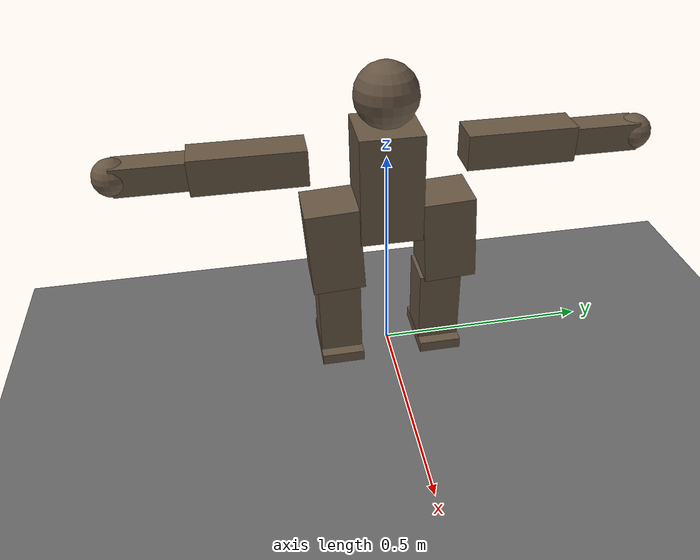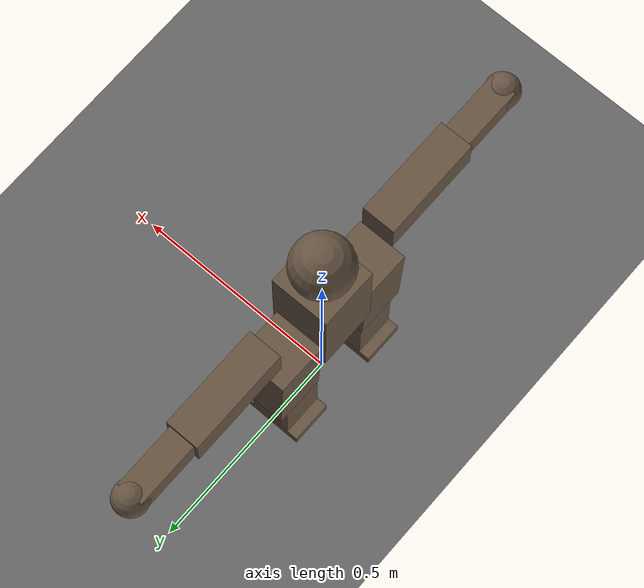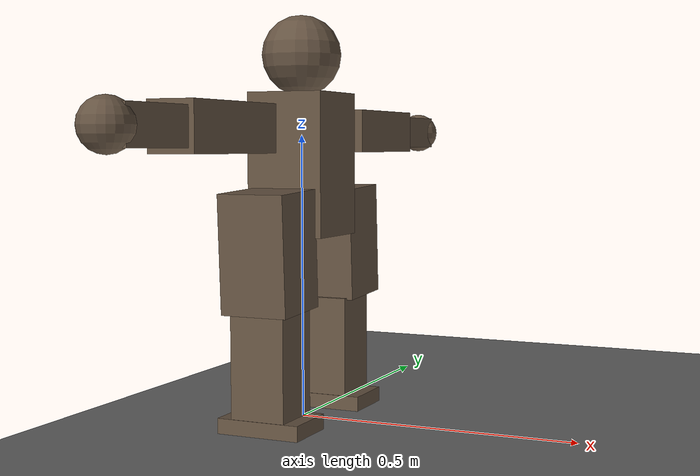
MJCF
<mujoco model="humanoid">
    <compiler angle="degree" inertiafromgeom="true"/>
    <default>
        <joint armature="0.045" damping="1.084"  limited="true"/>
        <geom conaffinity="0" condim="3" contype="0" material="geom" rgba="0.4 0.33 0.26 1.0"/>
        <position kp="21.1" forcerange="-15 15"/>
        <default class="collison">
            <geom group="1"/>
            <default class="foot">
                <geom type="box" friction="0.8 0.02 0.01" contype="1" conaffinity="1" density="1500"/>
            </default>
        </default>
    </default>
    <option iterations="8" timestep="0.003"/>
    <custom>
        <!-- brax custom params -->
        <numeric data="2500" name="constraint_limit_stiffness"/>
        <numeric data="27000" name="constraint_stiffness"/>
        <numeric data="30" name="constraint_ang_damping"/>
        <numeric data="80" name="constraint_vel_damping"/>
        <numeric data="-0.05" name="ang_damping"/>
        <numeric data="0.5" name="joint_scale_pos"/>
        <numeric data="0.1" name="joint_scale_ang"/>
        <numeric data="0" name="spring_mass_scale"/>
        <numeric data="1" name="spring_inertia_scale"/>
        <numeric data="20" name="matrix_inv_iterations"/>
        <numeric data="15" name="solver_maxls"/>
    </custom>
    <size nkey="5" nuser_geom="1"/>
    <visual>
        <map fogend="5" fogstart="3"/>
    </visual>
    <asset>
        <texture builtin="gradient" height="100" rgb1=".4 .5 .6" rgb2="0 0 0" type="skybox" width="100"/>
        <texture builtin="flat" height="1278" mark="cross" markrgb="1 1 1" name="texgeom" random="0.01" rgb1="0.8 0.6 0.4" rgb2="0.8 0.6 0.4" type="cube" width="127"/>
        <texture builtin="checker" height="100" name="texplane" rgb1="0 0 0" rgb2="0.8 0.8 0.8" type="2d" width="100"/>
        <material name="MatPlane" reflectance="0.5" shininess="1" specular="1" texrepeat="60 60" texture="texplane"/>
        <material name="geom" texture="texgeom" texuniform="true"/>

    </asset>
    <worldbody>
        <light cutoff="100" diffuse="1 1 1" dir="-0 0 -1.3" directional="true" exponent="1" pos="0 0 1.3" specular=".1 .1 .1"/>
        <geom conaffinity="1" condim="3" friction="1.5 .5 .5" material="MatPlane" name="floor" pos="0 0 0" size="20 20 0.125" type="plane" rgba="0.5 0.5 0.5 1.0"/>
        <body name="torso" pos="0 0 0.45">
            <site name="imu"/>
            <camera name="track" mode="trackcom" pos="0 -4 0" xyaxes="1 0 0 0 0 1"/>
            <joint armature="0" damping="0" limited="false" name="root" pos="0 0 0" stiffness="0" type="free"/>
            <geom contype="1" fromto="0 0 -0.125 0 0 0.125" name="torso1" size="0.07" type="box" density="1500"/>
            <geom contype="1" name="head" pos="0 0 .19" size=".07" type="sphere" user="258" density="1500"/>
            <!-- Right Thigh - Directly connected to torso -->
            <body name="right_thigh" pos="0 -0.13 -0.125" >
                <joint armature="0.01" axis="1 0 0" damping="5" name="right_hip_x" pos="0 0 0" range="-25 5" stiffness="10" type="hinge"/>
                <joint armature="0.01" axis="0 0 1" damping="5" name="right_hip_z" pos="0 0 0" range="-35 35" stiffness="10" type="hinge"/>
                <joint armature="0.0080" axis="0 1 0" damping="5" name="right_hip_y" pos="0 0 0" range="-90 60" stiffness="10" type="hinge"/>
                <geom contype="1" fromto="0 0 0.081 0 0.01 -.121" name="right_thigh1" size="0.06" type="box" density="1500"/>
                <body name="right_shin" pos="0 0.01 -0.121"  >
                    <joint armature="0.0060" axis="0 -1 0" name="right_knee" pos="0 0 .02" range="-90 0" type="hinge"/>
                    <geom contype="1" fromto="0 0 0 0 0 -.202" name="right_shin1" size="0.049" type="box" density="1500"/>
                    <body name="right_foot" pos="0 0 -0.102" >
                        <site name="right_foot"/>
                        <joint armature="0.01" axis="0 -1 0" damping="5" name="right_foot" pos="0 0 0" range="-25 25" stiffness="10" type="hinge" />
                        <geom name="right_foot"  pos="0 0 -0.102" size="0.075 0.05 0.025" user="0" class="foot"/>
                    </body>
                </body>
            </body>
            <!-- Left Thigh - Directly connected to torso -->
            <body name="left_thigh" pos="0 0.13 -0.125">
                <joint armature="0.01" axis="-1 0 0" damping="5" name="left_hip_x" pos="0 0 0" range="-25 5" stiffness="10" type="hinge"/>
                <joint armature="0.01" axis="0 0 -1" damping="5" name="left_hip_z" pos="0 0 0" range="-35 35" stiffness="10" type="hinge"/>
                <joint armature="0.01" axis="0 1 0" damping="5" name="left_hip_y" pos="0 0 0" range="-90 60" stiffness="10" type="hinge"/>
                <geom contype="1" fromto="0 0 0.081 0 0.01 -.121" name="left_thigh1" size="0.06" type="box" density="1500"/>
                <body name="left_shin" pos="0 -0.01 -0.121">
                    <joint armature="0.0060" axis="0 -1 0" name="left_knee" pos="0 0 .02" range="-90 0" stiffness="10" type="hinge"/>
                    <geom contype="1" fromto="0 0 0 0 0 -.202" name="left_shin1" size="0.049" type="box" density="1500"/>
                    <body name="left_foot" pos="0 0 -0.102">
                        <site name="left_foot"/>
                        <joint armature="0.01" axis="0 -1 0" damping="5" name="left_foot" pos="0 0 0" range="-25 25" stiffness="10" type="hinge"/>
                        <geom name="left_foot" pos="0 0 -0.102" size="0.075 0.05 0.025" class="foot"/>
                    </body>
                </body>
            </body>
        <body name="right_upper_arm" pos="0 -0.17 0.06">
            <joint armature="0.0068" axis="0 1 0" name="right_shoulder1" pos="0 0 0" range="-85 40" stiffness="10" type="hinge"/>
            <joint armature="0.0051" axis="1 0 0" name="right_shoulder2" pos="0 0 0" range="-85 40" stiffness="10" type="hinge"/>
            <geom fromto="0 0 0 0 -0.244 0" name="right_uarm1" size="0.04 0.16" type="box" density="1500"/>
            <body name="right_lower_arm" pos="0 -0.244 0">
                <joint armature="0.0028" axis="1 0 0" name="right_elbow" pos="0 0 0" range="-90 50" stiffness="10" type="hinge"/>
                <geom contype="1" fromto="0 0 0 0 -0.15 0" name="right_larm" size="0.031" type="box" density="1500"/>
                <geom contype="1" name="right_hand" pos="0 -0.15 0" size="0.04" type="sphere" density="1500"/>
            </body>
        </body>
        <body name="left_upper_arm" pos="0 0.17 0.06">
            <joint armature="0.0068" axis="0 1 0" name="left_shoulder1" pos="0 0 0" range="-40 85" stiffness="10" type="hinge"/>
            <joint armature="0.0051" axis="1 0 0" name="left_shoulder2" pos="0 0 0" range="-40 85" stiffness="10" type="hinge"/>
            <geom contype="1" fromto="0 0 0 0 0.244 0" name="left_uarm1" size="0.04 0.16" type="box" density="1500"/>
            <body name="left_lower_arm" pos="0 0.244 0">
                <joint armature="0.0028" axis="1 0 0" name="left_elbow" pos="0 0 0" range="-90 50" stiffness="10" type="hinge"/>
                <geom contype="1" fromto="0 0 0 0 0.15 0" name="left_larm" size="0.031" type="box" density="1500"/>
                <geom contype="1" name="left_hand" pos="0 0.15 0" size="0.04" type="sphere" density="1500"/>
            </body>
        </body>
        </body>
    </worldbody>
    <actuator>
        <position joint="right_hip_x" name="right_hip_x"  inheritrange="1.0"/>
        <position joint="right_hip_z" name="right_hip_z"  inheritrange="1.0"/>
        <position joint="right_hip_y" name="right_hip_y"  inheritrange="1.0"/>
        <position joint="right_knee" name="right_knee" inheritrange="1.0"/>
        <position joint="right_foot" name="right_foot" inheritrange="1.0"/>

        <position joint="left_hip_x" name="left_hip_x"  inheritrange="1.0"/>
        <position joint="left_hip_z" name="left_hip_z"  inheritrange="1.0"/>
        <position joint="left_hip_y" name="left_hip_y"  inheritrange="1.0"/>
        <position joint="left_knee" name="left_knee" inheritrange="1.0"/>
        <position joint="left_foot" name="left_foot"  inheritrange="1.0"/>

        <!-- Arm actuators remain unchanged -->
        <position joint="right_shoulder1" name="right_shoulder1" inheritrange="1.0"/>
        <position joint="right_shoulder2" name="right_shoulder2" inheritrange="1.0"/>
        <position joint="right_elbow" name="right_elbow" inheritrange="1.0"/>
        <position joint="left_shoulder1" name="left_shoulder1" inheritrange="1.0"/>
        <position joint="left_shoulder2" name="left_shoulder2" inheritrange="1.0"/>
        <position joint="left_elbow" name="left_elbow" inheritrange="1.0"/>
    </actuator>
    <sensor>
        <framepos objtype="site" objname="imu" name="position"/>
        <gyro site="imu" name="gyro"/>
        <velocimeter site="imu" name="local_linvel"/>
        <accelerometer site="imu" name="accelerometer"/>
        <framezaxis objtype="site" objname="imu" name="upvector"/>
        <framexaxis objtype="site" objname="imu" name="forwardvector"/>
        <force site="left_foot" name="left_foot_force"/>
        <force site="right_foot" name="right_foot_force"/>
    </sensor>
</mujoco>

<!--
add mass to links
change links to be prisms -->
